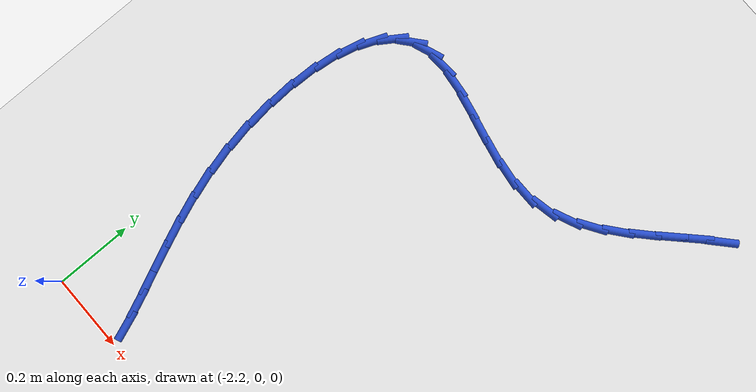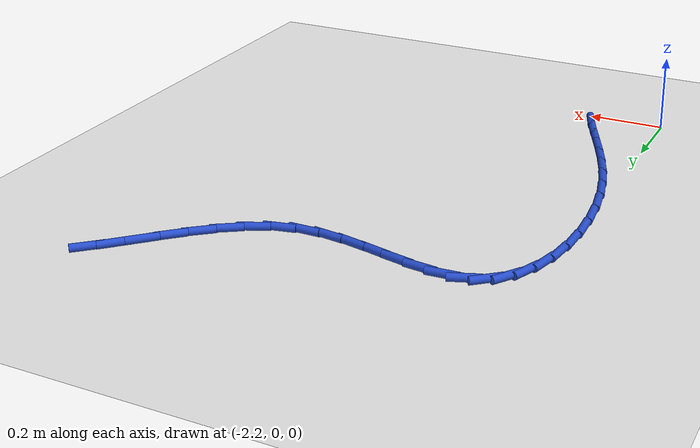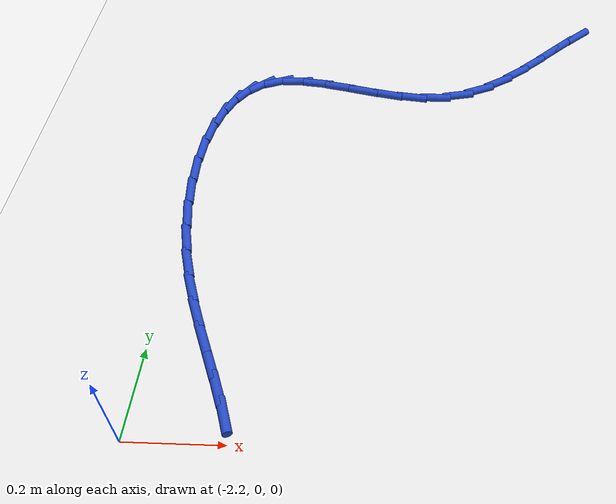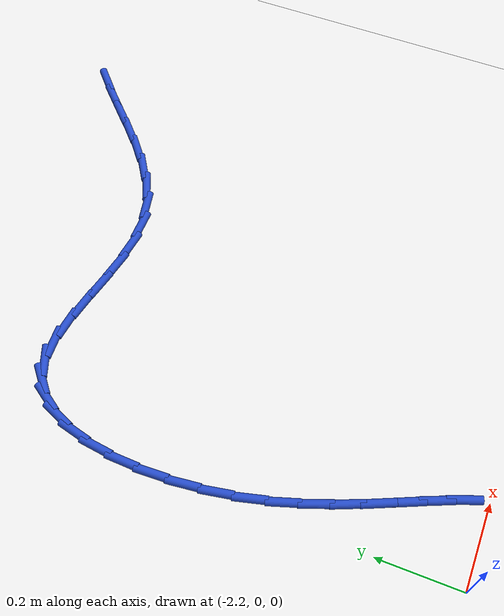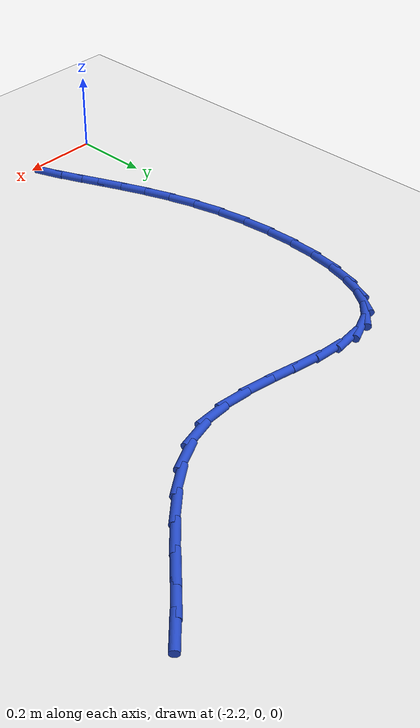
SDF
<sdf version="1.6">
 <world name="default">
  <model name="ground_plane">
   <static>1</static>
   <link name="link">
    <collision name="collision">
     <geometry><plane><normal>0 0 1</normal><size>100 100</size></plane></geometry>
     <surface><friction><ode><mu>100</mu><mu2>50</mu2></ode></friction></surface>
    </collision>
    <visual name="visual">
     <cast_shadows>0</cast_shadows>
     <geometry><plane><normal>0 0 1</normal><size>100 100</size></plane></geometry>
     <material>
      <script><uri>file://media/materials/scripts/gazebo.material</uri><name>Gazebo/WhiteGlow</name></script>
     </material>
    </visual>
   </link>
  </model>
  <model name="line">
   <link name="link_33">
    <pose>-1.229610774882492 1.2773744160614755 0.01 0 1.57 0.7376969506625876</pose>
    <collision name="collision">
     <geometry><cylinder><radius>0.01</radius><length>0.08</length></cylinder></geometry>
    </collision>
    <visual name="visual">
     <material>
      <script><name>Gazebo/Blue</name><uri>file://media/materials/scripts/gazebo.material</uri></script>
     </material>
     <geometry><cylinder><radius>0.01</radius><length>0.08</length></cylinder></geometry>
    </visual>
   </link>
   <link name="link_34">
    <pose>-1.2740171242704068 1.2370145858620545 0.01 0 1.57 0.7771471455929343</pose>
    <collision name="collision">
     <geometry><cylinder><radius>0.01</radius><length>0.08</length></cylinder></geometry>
    </collision>
    <visual name="visual">
     <material>
      <script><name>Gazebo/Blue</name><uri>file://media/materials/scripts/gazebo.material</uri></script>
     </material>
     <geometry><cylinder><radius>0.01</radius><length>0.08</length></cylinder></geometry>
    </visual>
   </link>
   <link name="link_35">
    <pose>-1.3190369913595408 1.1927315751294516 0.01 0 1.57 0.7791069998924405</pose>
    <collision name="collision">
     <geometry><cylinder><radius>0.01</radius><length>0.08</length></cylinder></geometry>
    </collision>
    <visual name="visual">
     <material>
      <script><name>Gazebo/Blue</name><uri>file://media/materials/scripts/gazebo.material</uri></script>
     </material>
     <geometry><cylinder><radius>0.01</radius><length>0.08</length></cylinder></geometry>
    </visual>
   </link>
   <link name="link_36">
    <pose>-1.3651638451779113 1.1471814835732663 0.01 0 1.57 0.7466071010453448</pose>
    <collision name="collision">
     <geometry><cylinder><radius>0.01</radius><length>0.08</length></cylinder></geometry>
    </collision>
    <visual name="visual">
     <material>
      <script><name>Gazebo/Blue</name><uri>file://media/materials/scripts/gazebo.material</uri></script>
     </material>
     <geometry><cylinder><radius>0.01</radius><length>0.08</length></cylinder></geometry>
    </visual>
   </link>
   <link name="link_37">
    <pose>-1.4128911547535352 1.1030204109030965 0.01 0 1.57 0.6779023765400117</pose>
    <collision name="collision">
     <geometry><cylinder><radius>0.01</radius><length>0.08</length></cylinder></geometry>
    </collision>
    <visual name="visual">
     <material>
      <script><name>Gazebo/Blue</name><uri>file://media/materials/scripts/gazebo.material</uri></script>
     </material>
     <geometry><cylinder><radius>0.01</radius><length>0.08</length></cylinder></geometry>
    </visual>
   </link>
   <link name="link_38">
    <pose>-1.4627123891144311 1.0629044568285417 0.01 0 1.57 0.5675950834509841</pose>
    <collision name="collision">
     <geometry><cylinder><radius>0.01</radius><length>0.08</length></cylinder></geometry>
    </collision>
    <visual name="visual">
     <material>
      <script><name>Gazebo/Blue</name><uri>file://media/materials/scripts/gazebo.material</uri></script>
     </material>
     <geometry><cylinder><radius>0.01</radius><length>0.08</length></cylinder></geometry>
    </visual>
   </link>
   <link name="link_39">
    <pose>-1.5151210172886151 1.0294897210592002 0.01 0 1.57 0.4090894531902799</pose>
    <collision name="collision">
     <geometry><cylinder><radius>0.01</radius><length>0.08</length></cylinder></geometry>
    </collision>
    <visual name="visual">
     <material>
      <script><name>Gazebo/Blue</name><uri>file://media/materials/scripts/gazebo.material</uri></script>
     </material>
     <geometry><cylinder><radius>0.01</radius><length>0.08</length></cylinder></geometry>
    </visual>
   </link>
   <link name="link_40">
    <pose>-1.5706105083041042 1.005432303304672 0.01 0 1.57 0.20225042453619588</pose>
    <collision name="collision">
     <geometry><cylinder><radius>0.01</radius><length>0.08</length></cylinder></geometry>
    </collision>
    <visual name="visual">
     <material>
      <script><name>Gazebo/Blue</name><uri>file://media/materials/scripts/gazebo.material</uri></script>
     </material>
     <geometry><cylinder><radius>0.01</radius><length>0.08</length></cylinder></geometry>
    </visual>
   </link>
   <link name="link_41">
    <pose>-1.6296543315826224 0.9933251307950688 0.01 0 1.57 0.0022355639189370366</pose>
    <collision name="collision">
     <geometry><cylinder><radius>0.01</radius><length>0.08</length></cylinder></geometry>
    </collision>
    <visual name="visual">
     <material>
      <script><name>Gazebo/Blue</name><uri>file://media/materials/scripts/gazebo.material</uri></script>
     </material>
     <geometry><cylinder><radius>0.01</radius><length>0.08</length></cylinder></geometry>
    </visual>
   </link>
   <link name="link_42">
    <pose>-1.6919106877489178 0.9931859524996396 0.01 0 1.57 -0.13088156825221947</pose>
    <collision name="collision">
     <geometry><cylinder><radius>0.01</radius><length>0.08</length></cylinder></geometry>
    </collision>
    <visual name="visual">
     <material>
      <script><name>Gazebo/Blue</name><uri>file://media/materials/scripts/gazebo.material</uri></script>
     </material>
     <geometry><cylinder><radius>0.01</radius><length>0.08</length></cylinder></geometry>
    </visual>
   </link>
   <link name="link_43">
    <pose>-1.7559563220397083 1.0016165392272118 0.01 0 1.57 -0.20484431959043367</pose>
    <collision name="collision">
     <geometry><cylinder><radius>0.01</radius><length>0.08</length></cylinder></geometry>
    </collision>
    <visual name="visual">
     <material>
      <script><name>Gazebo/Blue</name><uri>file://media/materials/scripts/gazebo.material</uri></script>
     </material>
     <geometry><cylinder><radius>0.01</radius><length>0.08</length></cylinder></geometry>
    </visual>
   </link>
   <link name="link_44">
    <pose>-1.8202934069173167 1.0149831097966568 0.01 0 1.57 -0.2283044788081608</pose>
    <collision name="collision">
     <geometry><cylinder><radius>0.01</radius><length>0.08</length></cylinder></geometry>
    </collision>
    <visual name="visual">
     <material>
      <script><name>Gazebo/Blue</name><uri>file://media/materials/scripts/gazebo.material</uri></script>
     </material>
     <geometry><cylinder><radius>0.01</radius><length>0.08</length></cylinder></geometry>
    </visual>
   </link>
   <link name="link_45">
    <pose>-1.8834241148440667 1.0296518830268466 0.01 0 1.57 -0.20140059858346837</pose>
    <collision name="collision">
     <geometry><cylinder><radius>0.01</radius><length>0.08</length></cylinder></geometry>
    </collision>
    <visual name="visual">
     <material>
      <script><name>Gazebo/Blue</name><uri>file://media/materials/scripts/gazebo.material</uri></script>
     </material>
     <geometry><cylinder><radius>0.01</radius><length>0.08</length></cylinder></geometry>
    </visual>
   </link>
   <link name="link_46">
    <pose>-1.9438506182822803 1.041989077736653 0.01 0 1.57 -0.11284703229303589</pose>
    <collision name="collision">
     <geometry><cylinder><radius>0.01</radius><length>0.08</length></cylinder></geometry>
    </collision>
    <visual name="visual">
     <material>
      <script><name>Gazebo/Blue</name><uri>file://media/materials/scripts/gazebo.material</uri></script>
     </material>
     <geometry><cylinder><radius>0.01</radius><length>0.08</length></cylinder></geometry>
    </visual>
   </link>
   <link name="link_47">
    <pose>-2.000075089694281 1.048360912744947 0.01 0 1.57 0.06378925422337141</pose>
    <collision name="collision">
     <geometry><cylinder><radius>0.01</radius><length>0.08</length></cylinder></geometry>
    </collision>
    <visual name="visual">
     <material>
      <script><name>Gazebo/Blue</name><uri>file://media/materials/scripts/gazebo.material</uri></script>
     </material>
     <geometry><cylinder><radius>0.01</radius><length>0.08</length></cylinder></geometry>
    </visual>
   </link>
   <link name="link_48">
    <pose>-2.0505997015423922 1.0451336068706005 0.01 0 1.57 0.36005503876371897</pose>
    <collision name="collision">
     <geometry><cylinder><radius>0.01</radius><length>0.08</length></cylinder></geometry>
    </collision>
    <visual name="visual">
     <material>
      <script><name>Gazebo/Blue</name><uri>file://media/materials/scripts/gazebo.material</uri></script>
     </material>
     <geometry><cylinder><radius>0.01</radius><length>0.08</length></cylinder></geometry>
    </visual>
   </link>
   <link name="link_49">
    <pose>-2.0939707594194394 1.028805891660384 0.01 0 1.57 0.70229616270924</pose>
    <collision name="collision">
     <geometry><cylinder><radius>0.01</radius><length>0.08</length></cylinder></geometry>
    </collision>
    <visual name="visual">
     <material>
      <script><name>Gazebo/Blue</name><uri>file://media/materials/scripts/gazebo.material</uri></script>
     </material>
     <geometry><cylinder><radius>0.01</radius><length>0.08</length></cylinder></geometry>
    </visual>
   </link>
   <link name="link_50">
    <pose>-2.129646939357075 0.9986159529966543 0.01 0 1.57 0.9804757417660569</pose>
    <collision name="collision">
     <geometry><cylinder><radius>0.01</radius><length>0.08</length></cylinder></geometry>
    </collision>
    <visual name="visual">
     <material>
      <script><name>Gazebo/Blue</name><uri>file://media/materials/scripts/gazebo.material</uri></script>
     </material>
     <geometry><cylinder><radius>0.01</radius><length>0.08</length></cylinder></geometry>
    </visual>
   </link>
   <link name="link_51">
    <pose>-2.1579456400989523 0.9563803501464853 0.01 0 1.57 1.1849307968061764</pose>
    <collision name="collision">
     <geometry><cylinder><radius>0.01</radius><length>0.08</length></cylinder></geometry>
    </collision>
    <visual name="visual">
     <material>
      <script><name>Gazebo/Blue</name><uri>file://media/materials/scripts/gazebo.material</uri></script>
     </material>
     <geometry><cylinder><radius>0.01</radius><length>0.08</length></cylinder></geometry>
    </visual>
   </link>
   <link name="link_52">
    <pose>-2.179217651620338 0.9040159018223688 0.01 0 1.57 1.33434999381477</pose>
    <collision name="collision">
     <geometry><cylinder><radius>0.01</radius><length>0.08</length></cylinder></geometry>
    </collision>
    <visual name="visual">
     <material>
      <script><name>Gazebo/Blue</name><uri>file://media/materials/scripts/gazebo.material</uri></script>
     </material>
     <geometry><cylinder><radius>0.01</radius><length>0.08</length></cylinder></geometry>
    </visual>
   </link>
   <link name="link_53">
    <pose>-2.1938137638965 0.8434394267367973 0.01 0 1.57 1.4477366214461218</pose>
    <collision name="collision">
     <geometry><cylinder><radius>0.01</radius><length>0.08</length></cylinder></geometry>
    </collision>
    <visual name="visual">
     <material>
      <script><name>Gazebo/Blue</name><uri>file://media/materials/scripts/gazebo.material</uri></script>
     </material>
     <geometry><cylinder><radius>0.01</radius><length>0.08</length></cylinder></geometry>
    </visual>
   </link>
   <link name="link_54">
    <pose>-2.202084766902704 0.7765677436022626 0.01 0 1.57 1.5385733594405524</pose>
    <collision name="collision">
     <geometry><cylinder><radius>0.01</radius><length>0.08</length></cylinder></geometry>
    </collision>
    <visual name="visual">
     <material>
      <script><name>Gazebo/Blue</name><uri>file://media/materials/scripts/gazebo.material</uri></script>
     </material>
     <geometry><cylinder><radius>0.01</radius><length>0.08</length></cylinder></geometry>
    </visual>
   </link>
   <link name="link_55">
    <pose>-2.204381450614218 0.7053176711312569 0.01 0 1.57 -1.5256936905462948</pose>
    <collision name="collision">
     <geometry><cylinder><radius>0.01</radius><length>0.08</length></cylinder></geometry>
    </collision>
    <visual name="visual">
     <material>
      <script><name>Gazebo/Blue</name><uri>file://media/materials/scripts/gazebo.material</uri></script>
     </material>
     <geometry><cylinder><radius>0.01</radius><length>0.08</length></cylinder></geometry>
    </visual>
   </link>
   <link name="link_56">
    <pose>-2.201054605006309 0.6316060280362733 0.01 0 1.57 -1.455500586011024</pose>
    <collision name="collision">
     <geometry><cylinder><radius>0.01</radius><length>0.08</length></cylinder></geometry>
    </collision>
    <visual name="visual">
     <material>
      <script><name>Gazebo/Blue</name><uri>file://media/materials/scripts/gazebo.material</uri></script>
     </material>
     <geometry><cylinder><radius>0.01</radius><length>0.08</length></cylinder></geometry>
    </visual>
   </link>
   <link name="link_57">
    <pose>-2.192455020054245 0.5573496330298038 0.01 0 1.57 -1.3873613677349261</pose>
    <collision name="collision">
     <geometry><cylinder><radius>0.01</radius><length>0.08</length></cylinder></geometry>
    </collision>
    <visual name="visual">
     <material>
      <script><name>Gazebo/Blue</name><uri>file://media/materials/scripts/gazebo.material</uri></script>
     </material>
     <geometry><cylinder><radius>0.01</radius><length>0.08</length></cylinder></geometry>
    </visual>
   </link>
   <link name="link_58">
    <pose>-2.178933485733291 0.4844653048243398 0.01 0 1.57 -1.3178686945142049</pose>
    <collision name="collision">
     <geometry><cylinder><radius>0.01</radius><length>0.08</length></cylinder></geometry>
    </collision>
    <visual name="visual">
     <material>
      <script><name>Gazebo/Blue</name><uri>file://media/materials/scripts/gazebo.material</uri></script>
     </material>
     <geometry><cylinder><radius>0.01</radius><length>0.08</length></cylinder></geometry>
    </visual>
   </link>
   <link name="link_59">
    <pose>-2.1608998579548477 0.41469267416335365 0.01 0 1.57 -1.255259775830408</pose>
    <collision name="collision">
     <geometry><cylinder><radius>0.01</radius><length>0.08</length></cylinder></geometry>
    </collision>
    <visual name="visual">
     <material>
      <script><name>Gazebo/Blue</name><uri>file://media/materials/scripts/gazebo.material</uri></script>
     </material>
     <geometry><cylinder><radius>0.01</radius><length>0.08</length></cylinder></geometry>
    </visual>
   </link>
   <link name="link_60">
    <pose>-2.1392403065606294 0.34834250934514066 0.01 0 1.57 -1.2060980835629027</pose>
    <collision name="collision">
     <geometry><cylinder><radius>0.01</radius><length>0.08</length></cylinder></geometry>
    </collision>
    <visual name="visual">
     <material>
      <script><name>Gazebo/Blue</name><uri>file://media/materials/scripts/gazebo.material</uri></script>
     </material>
     <geometry><cylinder><radius>0.01</radius><length>0.08</length></cylinder></geometry>
    </visual>
   </link>
   <link name="link_61">
    <pose>-2.115071111081589 0.28503528793262156 0.01 0 1.57 -1.1719245118300403</pose>
    <collision name="collision">
     <geometry><cylinder><radius>0.01</radius><length>0.08</length></cylinder></geometry>
    </collision>
    <visual name="visual">
     <material>
      <script><name>Gazebo/Blue</name><uri>file://media/materials/scripts/gazebo.material</uri></script>
     </material>
     <geometry><cylinder><radius>0.01</radius><length>0.08</length></cylinder></geometry>
    </visual>
   </link>
   <link name="link_62">
    <pose>-2.08951004436809 0.22438700777925166 0.01 0 1.57 -1.1541258008813746</pose>
    <collision name="collision">
     <geometry><cylinder><radius>0.01</radius><length>0.08</length></cylinder></geometry>
    </collision>
    <visual name="visual">
     <material>
      <script><name>Gazebo/Blue</name><uri>file://media/materials/scripts/gazebo.material</uri></script>
     </material>
     <geometry><cylinder><radius>0.01</radius><length>0.08</length></cylinder></geometry>
    </visual>
   </link>
   <link name="link_63">
    <pose>-2.0636748792704935 0.16601366673848728 0.01 0 1.57 -1.1542260940911735</pose>
    <collision name="collision">
     <geometry><cylinder><radius>0.01</radius><length>0.08</length></cylinder></geometry>
    </collision>
    <visual name="visual">
     <material>
      <script><name>Gazebo/Blue</name><uri>file://media/materials/scripts/gazebo.material</uri></script>
     </material>
     <geometry><cylinder><radius>0.01</radius><length>0.08</length></cylinder></geometry>
    </visual>
   </link>
   <link name="link_64">
    <pose>-2.038683388639164 0.10953126266378461 0.01 0 1.57 -1.1740910811404552</pose>
    <collision name="collision">
     <geometry><cylinder><radius>0.01</radius><length>0.08</length></cylinder></geometry>
    </collision>
    <visual name="visual">
     <material>
      <script><name>Gazebo/Blue</name><uri>file://media/materials/scripts/gazebo.material</uri></script>
     </material>
     <geometry><cylinder><radius>0.01</radius><length>0.08</length></cylinder></geometry>
    </visual>
   </link>
   <link name="link_65">
    <pose>-2.015653345324463 0.05455579340859899 0.01 0 1.57 -1.2160018590642396</pose>
    <collision name="collision">
     <geometry><cylinder><radius>0.01</radius><length>0.08</length></cylinder></geometry>
    </collision>
    <visual name="visual">
     <material>
      <script><name>Gazebo/Blue</name><uri>file://media/materials/scripts/gazebo.material</uri></script>
     </material>
     <geometry><cylinder><radius>0.01</radius><length>0.08</length></cylinder></geometry>
    </visual>
   </link>
  </model>
 </world>
</sdf>
